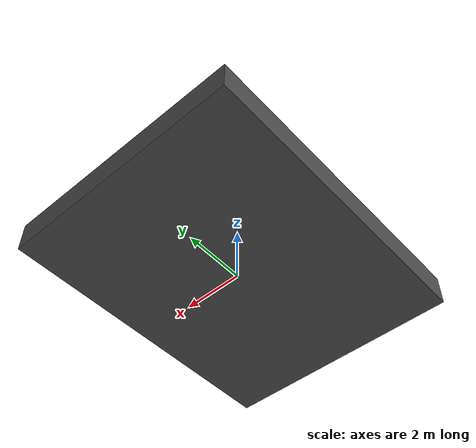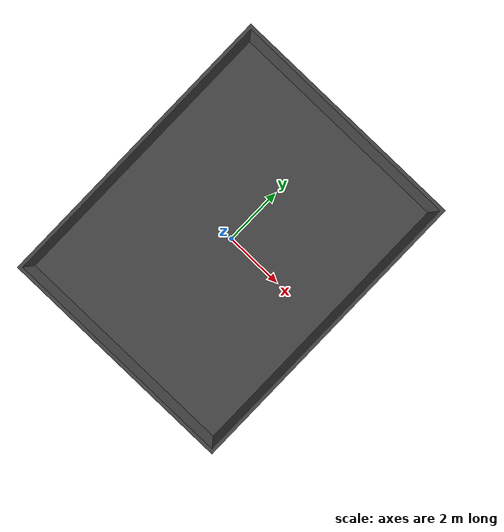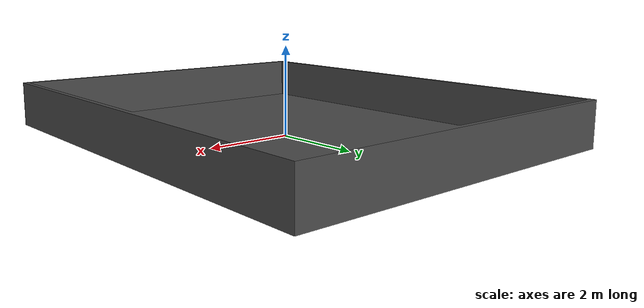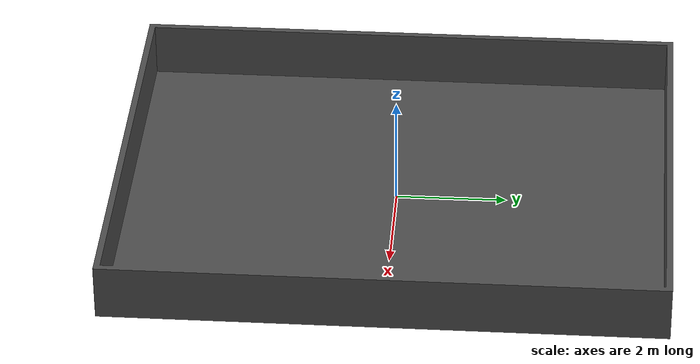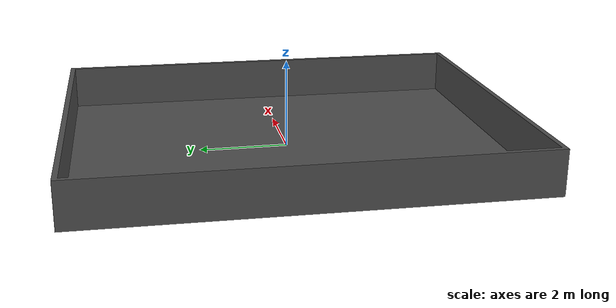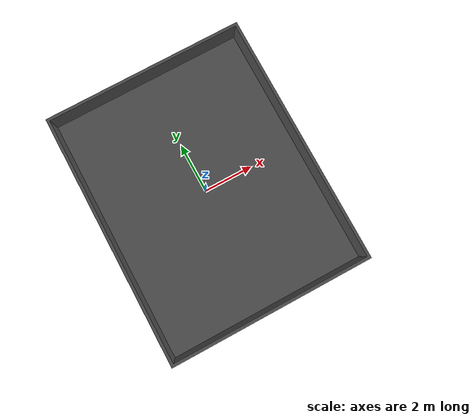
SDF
<?xml version='1.0'?>
<sdf version="1.5">
  <model name="iso_nav_room"> <!-- Very important to change-->
    <static>true</static>
    <pose>0 0 0 0 0 0</pose> <!-- Translation: X Y Z and Rotation: Roll Pitch Yaw (In Radian)-->
    <link name="body">

    <inertial> >
    <mass>0</mass>
      <inertia>
        <ixx>0</ixx>
        <ixy>0</ixy>
        <ixz>0</ixz>
        <iyy>0</iyy>
        <iyz>0</iyz>
        <izz>0</izz>
      </inertia>
    </inertial>

       <collision name="collision"> <!-- You can use mesh like below -->
        <geometry>
          <mesh><!-- Very important to change-->
             <uri>/home/sorox23/robotic_ws/master_thesis_ws/src/property_based_tester/environment/models/iso_nav_room/meshes/iso_nav_room.stl</uri>
             <scale>0.001 0.001 0.001</scale>
          </mesh>
        </geometry>
        <surface>
          <friction>
            <ode>
              <mu>0.75</mu>
              <mu2>0.75</mu2>
            </ode>
          </friction>
        </surface>
      </collision>

      <visual name="visual">
        <geometry>
          <mesh><!-- Very important to change-->
             <uri>/home/sorox23/robotic_ws/master_thesis_ws/src/property_based_tester/environment/models/iso_nav_room/meshes/iso_nav_room.stl</uri>
             <scale>0.001 0.001 0.001</scale>
          </mesh>
        </geometry>

        <material>
          <script> <!-- Very important to change-->
             <uri>/home/sorox23/robotic_ws/master_thesis_ws/src/property_based_tester/environment/models/iso_nav_room/materials/scripts</uri>
             <uri>/home/sorox23/robotic_ws/master_thesis_ws/src/property_based_tester/environment/models/iso_nav_room/materials/textures</uri>
             <name>Gazebo/DarkGrey</name>
          </script>
        </material>
      </visual>

    </link>
  </model>
</sdf>
